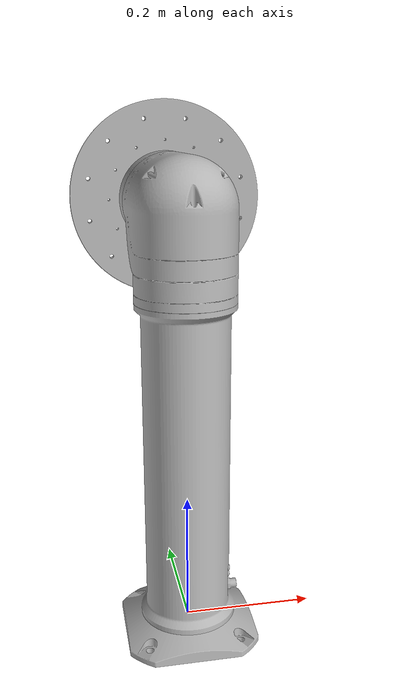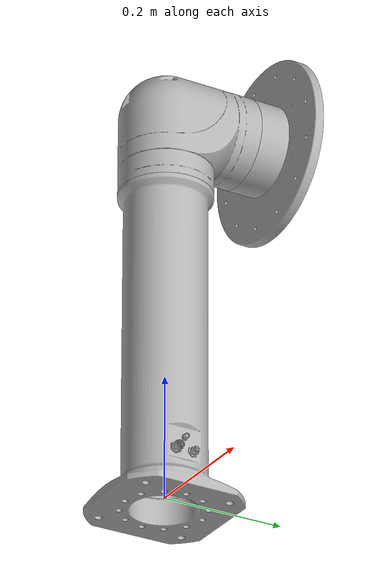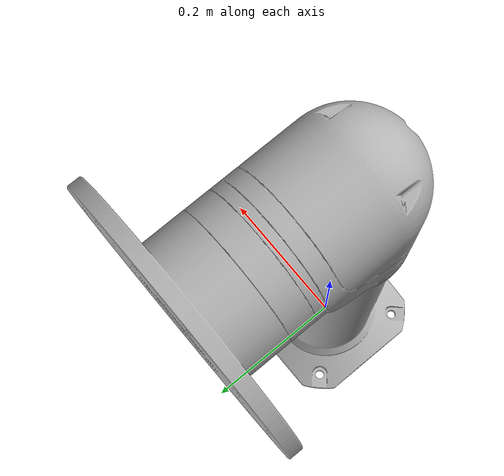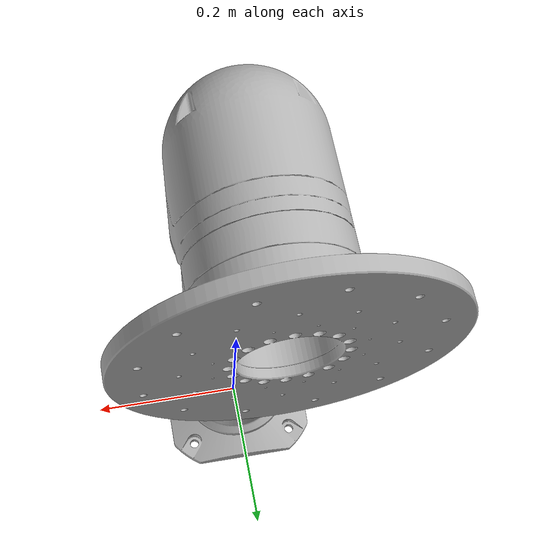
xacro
<?xml version="1.0" ?>
<robot name="positioner" xmlns:xacro="http://www.ros.org/wiki/xacro">

<xacro:include filename="materials.xacro" />

<link name="base_link">
  <inertial>
    <origin rpy="0 0 0" xyz="-0.0001382992340566185 -1.2746825006422278e-05 0.18862404205735872"/>
    <mass value="20.28663310148078"/>
    <inertia ixx="0.642664" ixy="1.6e-05" ixz="-0.000323" iyy="0.642499" iyz="-3.5e-05" izz="0.090451"/>
  </inertial>
  <visual>
    <origin rpy="0 0 0" xyz="0 0 0"/>
    <geometry>
      <mesh filename="file:///home/miro/Documents/ros/positioner_description/meshes/base_link.stl" scale="0.001 0.001 0.001"/>
    </geometry>
    <material name="silver_default"/>
  </visual>
  <collision>
    <origin rpy="0 0 0" xyz="0 0 0"/>
    <geometry>
      <mesh filename="file:///home/miro/Documents/ros/positioner_description/meshes/base_link.stl" scale="0.001 0.001 0.001"/>
    </geometry>
  </collision>
</link>

<link name="link_1_v1_1">
  <inertial>
    <origin rpy="0 0 0" xyz="-6.718383771657898e-05 0.05679328746205571 -0.10034084157688616"/>
    <mass value="41.79329048613838"/>
    <inertia ixx="2.934824" ixy="-0.000138" ixz="-0.000936" iyy="2.742938" iyz="-0.540381" izz="0.434949"/>
  </inertial>
  <visual>
    <origin rpy="0 0 0" xyz="-0.0 -0.0 -0.51"/>
    <geometry>
      <mesh filename="file:///home/miro/Documents/ros/positioner_description/meshes/link_1_v1_1.stl" scale="0.001 0.001 0.001"/>
    </geometry>
    <material name="silver_default"/>
  </visual>
  <collision>
    <origin rpy="0 0 0" xyz="-0.0 -0.0 -0.51"/>
    <geometry>
      <mesh filename="file:///home/miro/Documents/ros/positioner_description/meshes/link_1_v1_1.stl" scale="0.001 0.001 0.001"/>
    </geometry>
  </collision>
</link>

<link name="link_2_v1_1">
  <inertial>
    <origin rpy="0 0 0" xyz="-7.36518763520381e-05 -0.07393074030536362 -0.21084152728688138"/>
    <mass value="46.589449648494856"/>
    <inertia ixx="3.102916" ixy="-0.000156" ixz="-0.000947" iyy="2.896344" iyz="-0.549135" izz="0.459952"/>
  </inertial>
  <visual>
    <origin rpy="0 0 0" xyz="0.0 -0.1295 -0.638"/>
    <geometry>
      <mesh filename="file:///home/miro/Documents/ros/positioner_description/meshes/link_2_v1_1.stl" scale="0.001 0.001 0.001"/>
    </geometry>
    <material name="silver_default"/>
  </visual>
  <collision>
    <origin rpy="0 0 0" xyz="0.0 -0.1295 -0.638"/>
    <geometry>
      <mesh filename="file:///home/miro/Documents/ros/positioner_description/meshes/link_2_v1_1.stl" scale="0.001 0.001 0.001"/>
    </geometry>
  </collision>
</link>

<joint name="Rev3" type="continuous">
  <origin rpy="0 0 0" xyz="0.0 0.0 0.51"/>
  <parent link="base_link"/>
  <child link="link_1_v1_1"/>
  <axis xyz="0.0 0.0 -1.0"/>
</joint>

<joint name="Rev4" type="continuous">
  <origin rpy="0 0 0" xyz="-0.0 0.1295 0.128"/>
  <parent link="link_1_v1_1"/>
  <child link="link_2_v1_1"/>
  <axis xyz="0.0 1.0 -0.0"/>
</joint>

</robot>

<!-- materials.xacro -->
<robot name="positioner" xmlns:xacro="http://www.ros.org/wiki/xacro" >

<material name="silver_default">
  <color rgba="0.700 0.700 0.700 1.000"/>
</material>

</robot>
